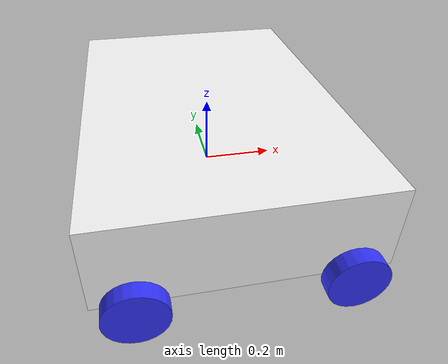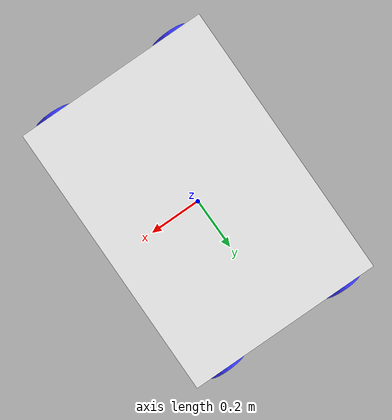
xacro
<?xml version="1.0"?>
<robot xmlns:xacro="http://www.ros.org/wiki/xacro">

    <xacro:include filename="inertial_macros.xacro" />

    <material name="white">
        <color rgba="1 1 1 1" />
    </material>

    <material name="orange">
        <color rgba="1 0.3 0.1 1" />
    </material>

    <material name="blue">
        <color rgba="0.2 0.2 1 1" />
    </material>

    <material name="black">
        <color rgba="0 0 0 1" />
    </material>

    <material name="red">
        <color rgba="1 0 0 1" />
    </material>

    <!-- BASE LINK -->
    <link name="base_link">
    </link>

    <!-- BASE_FOOTPRINT LINK -->

    <joint name="base_footprint_joint" type="fixed">
        <parent link="base_link"/>
        <child link="base_footprint"/>
        <origin xyz="0 0 0" rpy="0 0 0"/>
    </joint>

    <link name="base_footprint">
    </link>

    <!-- CHASSIS LINK -->
    <joint name="chassis_joint" type="fixed">
        <parent link="base_link"/>
        <child link="chassis"/>
        <origin xyz="0 0 0"/>
    </joint>

    <link name="chassis">
        <visual>
            <origin xyz="0 0 0.1125"/>
            <geometry>
                <box size="0.7 1 0.225"/>
            </geometry>
            <material name="white"/>
        </visual>
        <collision>
            <origin xyz="0 0 0.1125"/>
            <geometry>
                <box size="0.7 1.0 0.225"/>
            </geometry>
        </collision>
        <xacro:inertial_box mass="0.5" x="0.7" y="1.0" z="0.225">
            <origin xyz="0 0 0.1125" rpy="0 0 0" />
        </xacro:inertial_box>
    </link>

    <gazebo reference="chassis">
        <material>Gazebo/White</material>
    </gazebo>

    <!-- LEFT WHEEL LINK -->
    <joint name="back_left_wheel_joint" type="continuous">
        <parent link="base_link"/>
        <child link="left_wheel"/>
        <origin xyz="0.25 0.525 0" rpy="-${pi/2} 0 0" />
        <axis xyz="0 0 1"/>
    </joint>

    <link name="left_wheel">
        <visual>
            <geometry>
                <cylinder radius="0.076" length="0.04"/>
            </geometry>
            <material name="blue"/>
        </visual>
        <collision>
            <geometry>
                <cylinder radius="0.076" length="0.04"/>
            </geometry>
        </collision>
        <xacro:inertial_cylinder mass="0.5" length="0.04" radius="0.076">
            <origin xyz="0 0 0" rpy="0 0 0" />
        </xacro:inertial_cylinder>
    </link>

    <gazebo reference="left_wheel">
        <material>Gazebo/Blue</material>
        <mu1 value="5.0"/>
        <mu2 value="5.0"/>
    </gazebo>

    <!-- RIGHT WHEEL LINK -->
    <joint name="back_right_wheel_joint" type="continuous">
        <parent link="base_link"/>
        <child link="right_wheel"/>
        <origin xyz="0.25 -0.525 0" rpy="${pi/2} 0 0" />
        <axis xyz="0 0 -1"/>
    </joint>

    <link name="right_wheel">
        <visual>
            <geometry>
                <cylinder radius="0.076" length="0.04"/>
            </geometry>
            <material name="blue"/>
        </visual>
        <collision>
            <geometry>
                <cylinder radius="0.076" length="0.04"/>
            </geometry>
        </collision>
        <xacro:inertial_cylinder mass="0.5" length="0.04" radius="0.076">
            <origin xyz="0 0 0" rpy="0 0 0" />
        </xacro:inertial_cylinder>
    </link>

    <gazebo reference="right_wheel">
        <material>Gazebo/Blue</material>
        <mu1 value="5.0"/>
        <mu2 value="5.0"/>
    </gazebo>

    <!-- RIGHT FRONT WHEEL LINK -->
    <joint name="front_right_wheel_joint" type="continuous">
        <parent link="base_link" />
        <child link="right_front_wheel" />
        <origin xyz="-0.25 -0.525 0" rpy="${pi/2} 0 0" />
        <axis xyz="0 0 -1" />
    </joint>

    <link name="right_front_wheel">
        <visual>
            <geometry>
                <cylinder radius="0.076" length="0.04" />
            </geometry>
            <material name="blue" />
        </visual>
        <collision>
            <geometry>
                <cylinder radius="0.076" length="0.04" />
            </geometry>
        </collision>
        <xacro:inertial_cylinder mass="0.5" length="0.04" radius="0.076">
            <origin xyz="0 0 0" rpy="0 0 0" />
        </xacro:inertial_cylinder>
    </link>

    <gazebo reference="right_front_wheel">
        <material>Gazebo/Blue</material>
        <mu1 value="5.0"/>
        <mu2 value="5.0"/>
    </gazebo>

    <!-- LEFT FRONT WHEEL LINK -->
    <joint name="front_left_wheel_joint" type="continuous">
        <parent link="base_link" />
        <child link="left_front_wheel" />
        <origin xyz="-0.25 0.525 0" rpy="-${pi/2} 0 0" />
        <axis xyz="0 0 1" />
    </joint>

    <link name="left_front_wheel">
        <visual>
            <geometry>
                <cylinder radius="0.076" length="0.04" />
            </geometry>
            <material name="blue" />
        </visual>
        <collision>
            <geometry>
                <cylinder radius="0.076" length="0.04" />
            </geometry>
        </collision>
        <xacro:inertial_cylinder mass="0.5" length="0.04" radius="0.076">
            <origin xyz="0 0 0" rpy="0 0 0" />
        </xacro:inertial_cylinder>
    </link>

    <gazebo reference="left_front_wheel">
        <material>Gazebo/Blue</material>
       <mu1 value="5.0"/>
        <mu2 value="5.0"/>
    </gazebo>

    <!-- IMU LINK -->
    <joint name="imu_joint" type="fixed">
        <parent link="base_link" />
        <child link="imu_link" />
        <origin xyz="0 0 0" rpy="0 0 0" />
    </joint>

    <link name="imu_link">
        <visual>
            <geometry>
                <box size="0.01 0.01 0.01" />
            </geometry>
            <material name="white" />
        </visual>
        <collision>
            <geometry>
                <box size="0.01 0.01 0.01" />
            </geometry>
        </collision>
        <xacro:inertial_box mass="0.1" x="0.01" y="0.01" z="0.01">
            <origin xyz="0 0 0" rpy="0 0 0" />
        </xacro:inertial_box>
    </link>

    <gazebo reference="imu_link">
        <material>Gazebo/White</material>
    </gazebo>

</robot>
